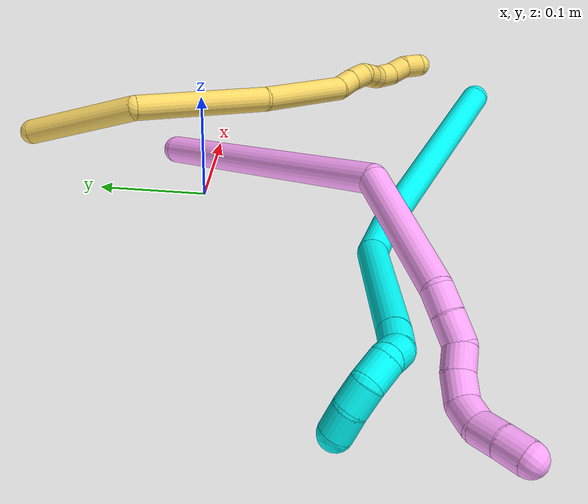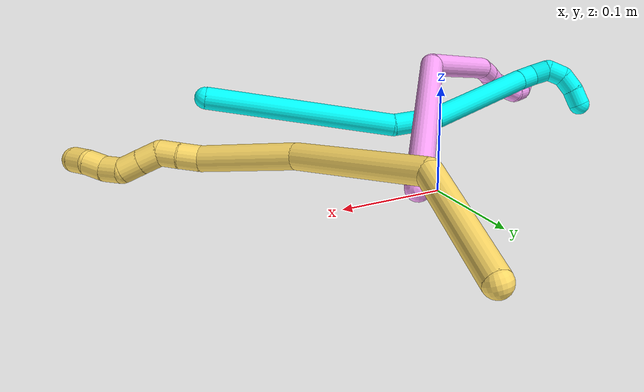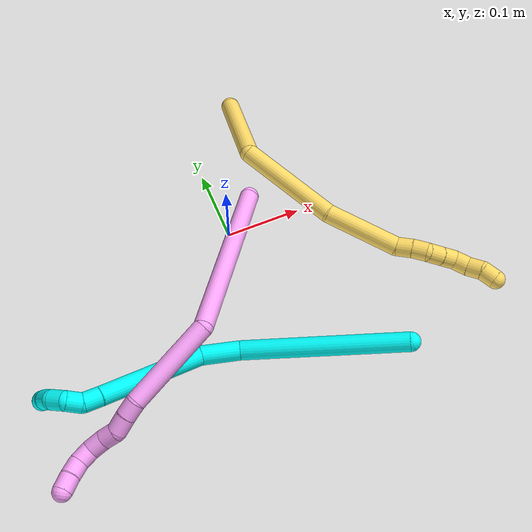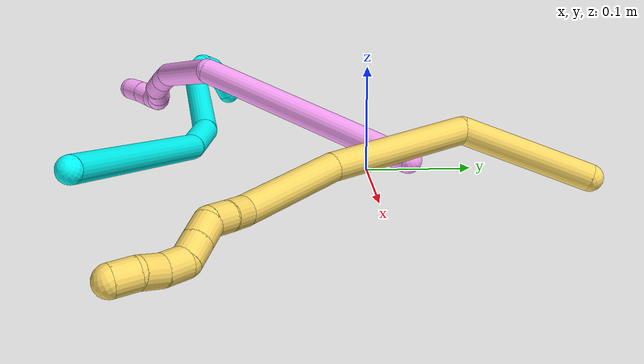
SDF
<sdf version="1.7">
 <world name="default">
  <model name="3">
   <static>0</static>
   <link name="3">
    <collision name="collision-cylinder-e_1_1_4">
     <pose>-0.014476 0.036827 -0.098389 -2.78344 -0.136928 0.724216</pose>
     <geometry><cylinder><radius>0.0125</radius><length>0.212096</length></cylinder></geometry>
     <surface>
      <friction><ode><mu>1.16</mu><mu2>1.16</mu2><slip1>0</slip1><slip2>0</slip2></ode></friction>
      <contact><ode><kp>1e+06</kp><kd>1</kd><max_vel>0</max_vel><min_depth>0.001</min_depth></ode></contact>
     </surface>
    </collision>
    <visual name="visual-cylinder-e_1_1_4">
     <pose>-0.014476 0.036827 -0.098389 -2.78344 -0.136928 0.724216</pose>
     <geometry><cylinder><radius>0.0125</radius><length>0.212096</length></cylinder></geometry>
     <material><ambient>0.003922 1 0.996078 1</ambient></material>
    </visual>
    <collision name="collision-cylinder-e_2_4_5">
     <pose>-0.03817 0.086415 -0.216389 -2.5647 -0.375324 1.1386</pose>
     <geometry><cylinder><radius>0.0125</radius><length>0.050295</length></cylinder></geometry>
     <surface>
      <friction><ode><mu>1.16</mu><mu2>1.16</mu2><slip1>0</slip1><slip2>0</slip2></ode></friction>
      <contact><ode><kp>1e+06</kp><kd>1</kd><max_vel>0</max_vel><min_depth>0.001</min_depth></ode></contact>
     </surface>
    </collision>
    <visual name="visual-cylinder-e_2_4_5">
     <pose>-0.03817 0.086415 -0.216389 -2.5647 -0.375324 1.1386</pose>
     <geometry><cylinder><radius>0.0125</radius><length>0.050295</length></cylinder></geometry>
     <material><ambient>0.003922 1 0.996078 1</ambient></material>
    </visual>
    <collision name="collision-cylinder-e_3_5_6">
     <pose>-0.091553 0.13115 -0.275332 -2.45905 -0.716722 1.62386</pose>
     <geometry><cylinder><radius>0.0125</radius><length>0.134461</length></cylinder></geometry>
     <surface>
      <friction><ode><mu>1.16</mu><mu2>1.16</mu2><slip1>0</slip1><slip2>0</slip2></ode></friction>
      <contact><ode><kp>1e+06</kp><kd>1</kd><max_vel>0</max_vel><min_depth>0.001</min_depth></ode></contact>
     </surface>
    </collision>
    <visual name="visual-cylinder-e_3_5_6">
     <pose>-0.091553 0.13115 -0.275332 -2.45905 -0.716722 1.62386</pose>
     <geometry><cylinder><radius>0.0125</radius><length>0.134461</length></cylinder></geometry>
     <material><ambient>0.003922 1 0.996078 1</ambient></material>
    </visual>
    <collision name="collision-cylinder-e_4_6_7">
     <pose>-0.142789 0.168452 -0.321842 -2.50282 -0.669277 1.62092</pose>
     <geometry><cylinder><radius>0.0125</radius><length>0.022796</length></cylinder></geometry>
     <surface>
      <friction><ode><mu>1.16</mu><mu2>1.16</mu2><slip1>0</slip1><slip2>0</slip2></ode></friction>
      <contact><ode><kp>1e+06</kp><kd>1</kd><max_vel>0</max_vel><min_depth>0.001</min_depth></ode></contact>
     </surface>
    </collision>
    <visual name="visual-cylinder-e_4_6_7">
     <pose>-0.142789 0.168452 -0.321842 -2.50282 -0.669277 1.62092</pose>
     <geometry><cylinder><radius>0.0125</radius><length>0.022796</length></cylinder></geometry>
     <material><ambient>0.003922 1 0.996078 1</ambient></material>
    </visual>
    <collision name="collision-cylinder-e_5_7_8">
     <pose>-0.151914 0.181188 -0.335676 -2.30299 -0.203378 0.450098</pose>
     <geometry><cylinder><radius>0.0125</radius><length>0.020335</length></cylinder></geometry>
     <surface>
      <friction><ode><mu>1.16</mu><mu2>1.16</mu2><slip1>0</slip1><slip2>0</slip2></ode></friction>
      <contact><ode><kp>1e+06</kp><kd>1</kd><max_vel>0</max_vel><min_depth>0.001</min_depth></ode></contact>
     </surface>
    </collision>
    <visual name="visual-cylinder-e_5_7_8">
     <pose>-0.151914 0.181188 -0.335676 -2.30299 -0.203378 0.450098</pose>
     <geometry><cylinder><radius>0.0125</radius><length>0.020335</length></cylinder></geometry>
     <material><ambient>0.003922 1 0.996078 1</ambient></material>
    </visual>
    <collision name="collision-cylinder-e_6_8_9">
     <pose>-0.152918 0.190322 -0.352129 -2.96698 0.10515 -1.08263</pose>
     <geometry><cylinder><radius>0.0125</radius><length>0.020005</length></cylinder></geometry>
     <surface>
      <friction><ode><mu>1.16</mu><mu2>1.16</mu2><slip1>0</slip1><slip2>0</slip2></ode></friction>
      <contact><ode><kp>1e+06</kp><kd>1</kd><max_vel>0</max_vel><min_depth>0.001</min_depth></ode></contact>
     </surface>
    </collision>
    <visual name="visual-cylinder-e_6_8_9">
     <pose>-0.152918 0.190322 -0.352129 -2.96698 0.10515 -1.08263</pose>
     <geometry><cylinder><radius>0.0125</radius><length>0.020005</length></cylinder></geometry>
     <material><ambient>0.003922 1 0.996078 1</ambient></material>
    </visual>
    <collision name="collision-cylinder-e_7_9_10">
     <pose>-0.148835 0.189132 -0.371001 2.83057 0.308027 1.56096</pose>
     <geometry><cylinder><radius>0.0125</radius><length>0.02001</length></cylinder></geometry>
     <surface>
      <friction><ode><mu>1.16</mu><mu2>1.16</mu2><slip1>0</slip1><slip2>0</slip2></ode></friction>
      <contact><ode><kp>1e+06</kp><kd>1</kd><max_vel>0</max_vel><min_depth>0.001</min_depth></ode></contact>
     </surface>
    </collision>
    <visual name="visual-cylinder-e_7_9_10">
     <pose>-0.148835 0.189132 -0.371001 2.83057 0.308027 1.56096</pose>
     <geometry><cylinder><radius>0.0125</radius><length>0.02001</length></cylinder></geometry>
     <material><ambient>0.003922 1 0.996078 1</ambient></material>
    </visual>
    <collision name="collision-cylinder-e_8_10_2">
     <pose>-0.142404 0.181301 -0.388099 2.59203 0.34663 1.11146</pose>
     <geometry><cylinder><radius>0.0125</radius><length>0.020002</length></cylinder></geometry>
     <surface>
      <friction><ode><mu>1.16</mu><mu2>1.16</mu2><slip1>0</slip1><slip2>0</slip2></ode></friction>
      <contact><ode><kp>1e+06</kp><kd>1</kd><max_vel>0</max_vel><min_depth>0.001</min_depth></ode></contact>
     </surface>
    </collision>
    <visual name="visual-cylinder-e_8_10_2">
     <pose>-0.142404 0.181301 -0.388099 2.59203 0.34663 1.11146</pose>
     <geometry><cylinder><radius>0.0125</radius><length>0.020002</length></cylinder></geometry>
     <material><ambient>0.003922 1 0.996078 1</ambient></material>
    </visual>
    <collision name="collision-sphere-2">
     <pose>-0.139006 0.176388 -0.39612 0 -0 0</pose>
     <geometry><sphere><radius>0.0125</radius></sphere></geometry>
     <surface>
      <friction><ode><mu>1.16</mu><mu2>1.16</mu2><slip1>0</slip1><slip2>0</slip2></ode></friction>
      <contact><ode><kp>1e+06</kp><kd>1</kd><max_vel>0</max_vel><min_depth>0.001</min_depth></ode></contact>
     </surface>
    </collision>
    <visual name="visual-sphere-2">
     <pose>-0.139006 0.176388 -0.39612 0 -0 0</pose>
     <geometry><sphere><radius>0.0125</radius></sphere></geometry>
     <material><ambient>0.003922 1 0.996078 1</ambient></material>
    </visual>
    <collision name="collision-sphere-10">
     <pose>-0.145802 0.186214 -0.380078 0 -0 0</pose>
     <geometry><sphere><radius>0.0125</radius></sphere></geometry>
     <surface>
      <friction><ode><mu>1.16</mu><mu2>1.16</mu2><slip1>0</slip1><slip2>0</slip2></ode></friction>
      <contact><ode><kp>1e+06</kp><kd>1</kd><max_vel>0</max_vel><min_depth>0.001</min_depth></ode></contact>
     </surface>
    </collision>
    <visual name="visual-sphere-10">
     <pose>-0.145802 0.186214 -0.380078 0 -0 0</pose>
     <geometry><sphere><radius>0.0125</radius></sphere></geometry>
     <material><ambient>0.003922 1 0.996078 1</ambient></material>
    </visual>
    <collision name="collision-sphere-9">
     <pose>-0.151868 0.19205 -0.361925 0 -0 0</pose>
     <geometry><sphere><radius>0.0125</radius></sphere></geometry>
     <surface>
      <friction><ode><mu>1.16</mu><mu2>1.16</mu2><slip1>0</slip1><slip2>0</slip2></ode></friction>
      <contact><ode><kp>1e+06</kp><kd>1</kd><max_vel>0</max_vel><min_depth>0.001</min_depth></ode></contact>
     </surface>
    </collision>
    <visual name="visual-sphere-9">
     <pose>-0.151868 0.19205 -0.361925 0 -0 0</pose>
     <geometry><sphere><radius>0.0125</radius></sphere></geometry>
     <material><ambient>0.003922 1 0.996078 1</ambient></material>
    </visual>
    <collision name="collision-sphere-4">
     <pose>-0.028951 0.073654 -0.196778 0 -0 0</pose>
     <geometry><sphere><radius>0.0125</radius></sphere></geometry>
     <surface>
      <friction><ode><mu>1.16</mu><mu2>1.16</mu2><slip1>0</slip1><slip2>0</slip2></ode></friction>
      <contact><ode><kp>1e+06</kp><kd>1</kd><max_vel>0</max_vel><min_depth>0.001</min_depth></ode></contact>
     </surface>
    </collision>
    <visual name="visual-sphere-4">
     <pose>-0.028951 0.073654 -0.196778 0 -0 0</pose>
     <geometry><sphere><radius>0.0125</radius></sphere></geometry>
     <material><ambient>0.003922 1 0.996078 1</ambient></material>
    </visual>
    <collision name="collision-sphere-1">
     <geometry><sphere><radius>0.0125</radius></sphere></geometry>
     <surface>
      <friction><ode><mu>1.16</mu><mu2>1.16</mu2><slip1>0</slip1><slip2>0</slip2></ode></friction>
      <contact><ode><kp>1e+06</kp><kd>1</kd><max_vel>0</max_vel><min_depth>0.001</min_depth></ode></contact>
     </surface>
    </collision>
    <visual name="visual-sphere-1">
     <geometry><sphere><radius>0.0125</radius></sphere></geometry>
     <material><ambient>0.003922 1 0.996078 1</ambient></material>
    </visual>
    <collision name="collision-sphere-8">
     <pose>-0.153968 0.188594 -0.342332 0 -0 0</pose>
     <geometry><sphere><radius>0.0125</radius></sphere></geometry>
     <surface>
      <friction><ode><mu>1.16</mu><mu2>1.16</mu2><slip1>0</slip1><slip2>0</slip2></ode></friction>
      <contact><ode><kp>1e+06</kp><kd>1</kd><max_vel>0</max_vel><min_depth>0.001</min_depth></ode></contact>
     </surface>
    </collision>
    <visual name="visual-sphere-8">
     <pose>-0.153968 0.188594 -0.342332 0 -0 0</pose>
     <geometry><sphere><radius>0.0125</radius></sphere></geometry>
     <material><ambient>0.003922 1 0.996078 1</ambient></material>
    </visual>
    <collision name="collision-sphere-5">
     <pose>-0.047388 0.099176 -0.235999 0 -0 0</pose>
     <geometry><sphere><radius>0.0125</radius></sphere></geometry>
     <surface>
      <friction><ode><mu>1.16</mu><mu2>1.16</mu2><slip1>0</slip1><slip2>0</slip2></ode></friction>
      <contact><ode><kp>1e+06</kp><kd>1</kd><max_vel>0</max_vel><min_depth>0.001</min_depth></ode></contact>
     </surface>
    </collision>
    <visual name="visual-sphere-5">
     <pose>-0.047388 0.099176 -0.235999 0 -0 0</pose>
     <geometry><sphere><radius>0.0125</radius></sphere></geometry>
     <material><ambient>0.003922 1 0.996078 1</ambient></material>
    </visual>
    <collision name="collision-sphere-6">
     <pose>-0.135718 0.163123 -0.314666 0 -0 0</pose>
     <geometry><sphere><radius>0.0125</radius></sphere></geometry>
     <surface>
      <friction><ode><mu>1.16</mu><mu2>1.16</mu2><slip1>0</slip1><slip2>0</slip2></ode></friction>
      <contact><ode><kp>1e+06</kp><kd>1</kd><max_vel>0</max_vel><min_depth>0.001</min_depth></ode></contact>
     </surface>
    </collision>
    <visual name="visual-sphere-6">
     <pose>-0.135718 0.163123 -0.314666 0 -0 0</pose>
     <geometry><sphere><radius>0.0125</radius></sphere></geometry>
     <material><ambient>0.003922 1 0.996078 1</ambient></material>
    </visual>
    <collision name="collision-sphere-7">
     <pose>-0.149861 0.173782 -0.329019 0 -0 0</pose>
     <geometry><sphere><radius>0.0125</radius></sphere></geometry>
     <surface>
      <friction><ode><mu>1.16</mu><mu2>1.16</mu2><slip1>0</slip1><slip2>0</slip2></ode></friction>
      <contact><ode><kp>1e+06</kp><kd>1</kd><max_vel>0</max_vel><min_depth>0.001</min_depth></ode></contact>
     </surface>
    </collision>
    <visual name="visual-sphere-7">
     <pose>-0.149861 0.173782 -0.329019 0 -0 0</pose>
     <geometry><sphere><radius>0.0125</radius></sphere></geometry>
     <material><ambient>0.003922 1 0.996078 1</ambient></material>
    </visual>
    <inertial>
     <pose>-0.06506 0.097069 -0.210332 0 -0 0</pose>
     <mass>0.5</mass>
     <inertia>
      <ixx>0.001282</ixx>
      <ixy>0</ixy>
      <ixz>0</ixz>
      <iyy>0.000265</iyy>
      <iyz>0</iyz>
      <izz>-0.000165</izz>
     </inertia>
    </inertial>
   </link>
   <pose>0.139916 -0.25361 0.047988 1.01858 0.155695 0.982852</pose>
  </model>
  <model name="4">
   <static>0</static>
   <link name="4">
    <collision name="collision-cylinder-e_1_1_4">
     <pose>0.007627 -0.060784 -0.10121 2.60075 0.064516 0.23177</pose>
     <geometry><cylinder><radius>0.0125</radius><length>0.236611</length></cylinder></geometry>
     <surface>
      <friction><ode><mu>1.16</mu><mu2>1.16</mu2><slip1>0</slip1><slip2>0</slip2></ode></friction>
      <contact><ode><kp>1e+06</kp><kd>1</kd><max_vel>0</max_vel><min_depth>0.001</min_depth></ode></contact>
     </surface>
    </collision>
    <visual name="visual-cylinder-e_1_1_4">
     <pose>0.007627 -0.060784 -0.10121 2.60075 0.064516 0.23177</pose>
     <geometry><cylinder><radius>0.0125</radius><length>0.236611</length></cylinder></geometry>
     <material><ambient>1 0.65098 0.996078 1</ambient></material>
    </visual>
    <collision name="collision-cylinder-e_2_4_5">
     <pose>-0.014627 -0.130609 -0.252396 2.9626 -0.531809 -2.50504</pose>
     <geometry><cylinder><radius>0.0125</radius><length>0.117854</length></cylinder></geometry>
     <surface>
      <friction><ode><mu>1.16</mu><mu2>1.16</mu2><slip1>0</slip1><slip2>0</slip2></ode></friction>
      <contact><ode><kp>1e+06</kp><kd>1</kd><max_vel>0</max_vel><min_depth>0.001</min_depth></ode></contact>
     </surface>
    </collision>
    <visual name="visual-cylinder-e_2_4_5">
     <pose>-0.014627 -0.130609 -0.252396 2.9626 -0.531809 -2.50504</pose>
     <geometry><cylinder><radius>0.0125</radius><length>0.117854</length></cylinder></geometry>
     <material><ambient>1 0.65098 0.996078 1</ambient></material>
    </visual>
    <collision name="collision-cylinder-e_3_5_6">
     <pose>-0.049647 -0.137993 -0.311285 -2.95758 -0.515709 2.46849</pose>
     <geometry><cylinder><radius>0.0125</radius><length>0.020839</length></cylinder></geometry>
     <surface>
      <friction><ode><mu>1.16</mu><mu2>1.16</mu2><slip1>0</slip1><slip2>0</slip2></ode></friction>
      <contact><ode><kp>1e+06</kp><kd>1</kd><max_vel>0</max_vel><min_depth>0.001</min_depth></ode></contact>
     </surface>
    </collision>
    <visual name="visual-cylinder-e_3_5_6">
     <pose>-0.049647 -0.137993 -0.311285 -2.95758 -0.515709 2.46849</pose>
     <geometry><cylinder><radius>0.0125</radius><length>0.020839</length></cylinder></geometry>
     <material><ambient>1 0.65098 0.996078 1</ambient></material>
    </visual>
    <collision name="collision-cylinder-e_4_6_7">
     <pose>-0.059956 -0.133612 -0.329844 -2.86653 -0.476201 2.10506</pose>
     <geometry><cylinder><radius>0.0125</radius><length>0.02256</length></cylinder></geometry>
     <surface>
      <friction><ode><mu>1.16</mu><mu2>1.16</mu2><slip1>0</slip1><slip2>0</slip2></ode></friction>
      <contact><ode><kp>1e+06</kp><kd>1</kd><max_vel>0</max_vel><min_depth>0.001</min_depth></ode></contact>
     </surface>
    </collision>
    <visual name="visual-cylinder-e_4_6_7">
     <pose>-0.059956 -0.133612 -0.329844 -2.86653 -0.476201 2.10506</pose>
     <geometry><cylinder><radius>0.0125</radius><length>0.02256</length></cylinder></geometry>
     <material><ambient>1 0.65098 0.996078 1</ambient></material>
    </visual>
    <collision name="collision-cylinder-e_5_7_8">
     <pose>-0.07323 -0.128412 -0.344916 -2.71332 -0.936443 2.32937</pose>
     <geometry><cylinder><radius>0.0125</radius><length>0.020122</length></cylinder></geometry>
     <surface>
      <friction><ode><mu>1.16</mu><mu2>1.16</mu2><slip1>0</slip1><slip2>0</slip2></ode></friction>
      <contact><ode><kp>1e+06</kp><kd>1</kd><max_vel>0</max_vel><min_depth>0.001</min_depth></ode></contact>
     </surface>
    </collision>
    <visual name="visual-cylinder-e_5_7_8">
     <pose>-0.07323 -0.128412 -0.344916 -2.71332 -0.936443 2.32937</pose>
     <geometry><cylinder><radius>0.0125</radius><length>0.020122</length></cylinder></geometry>
     <material><ambient>1 0.65098 0.996078 1</ambient></material>
    </visual>
    <collision name="collision-cylinder-e_6_8_9">
     <pose>-0.089039 -0.125053 -0.35778 -3.02336 -0.79945 2.86322</pose>
     <geometry><cylinder><radius>0.0125</radius><length>0.021493</length></cylinder></geometry>
     <surface>
      <friction><ode><mu>1.16</mu><mu2>1.16</mu2><slip1>0</slip1><slip2>0</slip2></ode></friction>
      <contact><ode><kp>1e+06</kp><kd>1</kd><max_vel>0</max_vel><min_depth>0.001</min_depth></ode></contact>
     </surface>
    </collision>
    <visual name="visual-cylinder-e_6_8_9">
     <pose>-0.089039 -0.125053 -0.35778 -3.02336 -0.79945 2.86322</pose>
     <geometry><cylinder><radius>0.0125</radius><length>0.021493</length></cylinder></geometry>
     <material><ambient>1 0.65098 0.996078 1</ambient></material>
    </visual>
    <collision name="collision-cylinder-e_7_9_10">
     <pose>-0.101353 -0.127202 -0.373605 2.79453 -0.47702 -1.89227</pose>
     <geometry><cylinder><radius>0.0125</radius><length>0.020077</length></cylinder></geometry>
     <surface>
      <friction><ode><mu>1.16</mu><mu2>1.16</mu2><slip1>0</slip1><slip2>0</slip2></ode></friction>
      <contact><ode><kp>1e+06</kp><kd>1</kd><max_vel>0</max_vel><min_depth>0.001</min_depth></ode></contact>
     </surface>
    </collision>
    <visual name="visual-cylinder-e_7_9_10">
     <pose>-0.101353 -0.127202 -0.373605 2.79453 -0.47702 -1.89227</pose>
     <geometry><cylinder><radius>0.0125</radius><length>0.020077</length></cylinder></geometry>
     <material><ambient>1 0.65098 0.996078 1</ambient></material>
    </visual>
    <collision name="collision-cylinder-e_8_10_11">
     <pose>-0.10735 -0.135123 -0.390738 2.63207 -0.137702 -0.517725</pose>
     <geometry><cylinder><radius>0.0125</radius><length>0.020232</length></cylinder></geometry>
     <surface>
      <friction><ode><mu>1.16</mu><mu2>1.16</mu2><slip1>0</slip1><slip2>0</slip2></ode></friction>
      <contact><ode><kp>1e+06</kp><kd>1</kd><max_vel>0</max_vel><min_depth>0.001</min_depth></ode></contact>
     </surface>
    </collision>
    <visual name="visual-cylinder-e_8_10_11">
     <pose>-0.10735 -0.135123 -0.390738 2.63207 -0.137702 -0.517725</pose>
     <geometry><cylinder><radius>0.0125</radius><length>0.020232</length></cylinder></geometry>
     <material><ambient>1 0.65098 0.996078 1</ambient></material>
    </visual>
    <collision name="collision-cylinder-e_9_11_2">
     <pose>-0.109825 -0.143903 -0.408749 2.74372 -0.107644 -0.522255</pose>
     <geometry><cylinder><radius>0.0125</radius><length>0.020213</length></cylinder></geometry>
     <surface>
      <friction><ode><mu>1.16</mu><mu2>1.16</mu2><slip1>0</slip1><slip2>0</slip2></ode></friction>
      <contact><ode><kp>1e+06</kp><kd>1</kd><max_vel>0</max_vel><min_depth>0.001</min_depth></ode></contact>
     </surface>
    </collision>
    <visual name="visual-cylinder-e_9_11_2">
     <pose>-0.109825 -0.143903 -0.408749 2.74372 -0.107644 -0.522255</pose>
     <geometry><cylinder><radius>0.0125</radius><length>0.020213</length></cylinder></geometry>
     <material><ambient>1 0.65098 0.996078 1</ambient></material>
    </visual>
    <collision name="collision-sphere-2">
     <pose>-0.11091 -0.147797 -0.418012 0 -0 0</pose>
     <geometry><sphere><radius>0.0125</radius></sphere></geometry>
     <surface>
      <friction><ode><mu>1.16</mu><mu2>1.16</mu2><slip1>0</slip1><slip2>0</slip2></ode></friction>
      <contact><ode><kp>1e+06</kp><kd>1</kd><max_vel>0</max_vel><min_depth>0.001</min_depth></ode></contact>
     </surface>
    </collision>
    <visual name="visual-sphere-2">
     <pose>-0.11091 -0.147797 -0.418012 0 -0 0</pose>
     <geometry><sphere><radius>0.0125</radius></sphere></geometry>
     <material><ambient>1 0.65098 0.996078 1</ambient></material>
    </visual>
    <collision name="collision-sphere-11">
     <pose>-0.108739 -0.14001 -0.399485 0 -0 0</pose>
     <geometry><sphere><radius>0.0125</radius></sphere></geometry>
     <surface>
      <friction><ode><mu>1.16</mu><mu2>1.16</mu2><slip1>0</slip1><slip2>0</slip2></ode></friction>
      <contact><ode><kp>1e+06</kp><kd>1</kd><max_vel>0</max_vel><min_depth>0.001</min_depth></ode></contact>
     </surface>
    </collision>
    <visual name="visual-sphere-11">
     <pose>-0.108739 -0.14001 -0.399485 0 -0 0</pose>
     <geometry><sphere><radius>0.0125</radius></sphere></geometry>
     <material><ambient>1 0.65098 0.996078 1</ambient></material>
    </visual>
    <collision name="collision-sphere-10">
     <pose>-0.105962 -0.130235 -0.381991 0 -0 0</pose>
     <geometry><sphere><radius>0.0125</radius></sphere></geometry>
     <surface>
      <friction><ode><mu>1.16</mu><mu2>1.16</mu2><slip1>0</slip1><slip2>0</slip2></ode></friction>
      <contact><ode><kp>1e+06</kp><kd>1</kd><max_vel>0</max_vel><min_depth>0.001</min_depth></ode></contact>
     </surface>
    </collision>
    <visual name="visual-sphere-10">
     <pose>-0.105962 -0.130235 -0.381991 0 -0 0</pose>
     <geometry><sphere><radius>0.0125</radius></sphere></geometry>
     <material><ambient>1 0.65098 0.996078 1</ambient></material>
    </visual>
    <collision name="collision-sphere-9">
     <pose>-0.096744 -0.124169 -0.365219 0 -0 0</pose>
     <geometry><sphere><radius>0.0125</radius></sphere></geometry>
     <surface>
      <friction><ode><mu>1.16</mu><mu2>1.16</mu2><slip1>0</slip1><slip2>0</slip2></ode></friction>
      <contact><ode><kp>1e+06</kp><kd>1</kd><max_vel>0</max_vel><min_depth>0.001</min_depth></ode></contact>
     </surface>
    </collision>
    <visual name="visual-sphere-9">
     <pose>-0.096744 -0.124169 -0.365219 0 -0 0</pose>
     <geometry><sphere><radius>0.0125</radius></sphere></geometry>
     <material><ambient>1 0.65098 0.996078 1</ambient></material>
    </visual>
    <collision name="collision-sphere-4">
     <pose>0.015255 -0.121567 -0.202419 0 -0 0</pose>
     <geometry><sphere><radius>0.0125</radius></sphere></geometry>
     <surface>
      <friction><ode><mu>1.16</mu><mu2>1.16</mu2><slip1>0</slip1><slip2>0</slip2></ode></friction>
      <contact><ode><kp>1e+06</kp><kd>1</kd><max_vel>0</max_vel><min_depth>0.001</min_depth></ode></contact>
     </surface>
    </collision>
    <visual name="visual-sphere-4">
     <pose>0.015255 -0.121567 -0.202419 0 -0 0</pose>
     <geometry><sphere><radius>0.0125</radius></sphere></geometry>
     <material><ambient>1 0.65098 0.996078 1</ambient></material>
    </visual>
    <collision name="collision-sphere-1">
     <geometry><sphere><radius>0.0125</radius></sphere></geometry>
     <surface>
      <friction><ode><mu>1.16</mu><mu2>1.16</mu2><slip1>0</slip1><slip2>0</slip2></ode></friction>
      <contact><ode><kp>1e+06</kp><kd>1</kd><max_vel>0</max_vel><min_depth>0.001</min_depth></ode></contact>
     </surface>
    </collision>
    <visual name="visual-sphere-1">
     <geometry><sphere><radius>0.0125</radius></sphere></geometry>
     <material><ambient>1 0.65098 0.996078 1</ambient></material>
    </visual>
    <collision name="collision-sphere-8">
     <pose>-0.081334 -0.125936 -0.35034 0 -0 0</pose>
     <geometry><sphere><radius>0.0125</radius></sphere></geometry>
     <surface>
      <friction><ode><mu>1.16</mu><mu2>1.16</mu2><slip1>0</slip1><slip2>0</slip2></ode></friction>
      <contact><ode><kp>1e+06</kp><kd>1</kd><max_vel>0</max_vel><min_depth>0.001</min_depth></ode></contact>
     </surface>
    </collision>
    <visual name="visual-sphere-8">
     <pose>-0.081334 -0.125936 -0.35034 0 -0 0</pose>
     <geometry><sphere><radius>0.0125</radius></sphere></geometry>
     <material><ambient>1 0.65098 0.996078 1</ambient></material>
    </visual>
    <collision name="collision-sphere-5">
     <pose>-0.044508 -0.139652 -0.302374 0 -0 0</pose>
     <geometry><sphere><radius>0.0125</radius></sphere></geometry>
     <surface>
      <friction><ode><mu>1.16</mu><mu2>1.16</mu2><slip1>0</slip1><slip2>0</slip2></ode></friction>
      <contact><ode><kp>1e+06</kp><kd>1</kd><max_vel>0</max_vel><min_depth>0.001</min_depth></ode></contact>
     </surface>
    </collision>
    <visual name="visual-sphere-5">
     <pose>-0.044508 -0.139652 -0.302374 0 -0 0</pose>
     <geometry><sphere><radius>0.0125</radius></sphere></geometry>
     <material><ambient>1 0.65098 0.996078 1</ambient></material>
    </visual>
    <collision name="collision-sphere-6">
     <pose>-0.054785 -0.136334 -0.320196 0 -0 0</pose>
     <geometry><sphere><radius>0.0125</radius></sphere></geometry>
     <surface>
      <friction><ode><mu>1.16</mu><mu2>1.16</mu2><slip1>0</slip1><slip2>0</slip2></ode></friction>
      <contact><ode><kp>1e+06</kp><kd>1</kd><max_vel>0</max_vel><min_depth>0.001</min_depth></ode></contact>
     </surface>
    </collision>
    <visual name="visual-sphere-6">
     <pose>-0.054785 -0.136334 -0.320196 0 -0 0</pose>
     <geometry><sphere><radius>0.0125</radius></sphere></geometry>
     <material><ambient>1 0.65098 0.996078 1</ambient></material>
    </visual>
    <collision name="collision-sphere-7">
     <pose>-0.065127 -0.130889 -0.339492 0 -0 0</pose>
     <geometry><sphere><radius>0.0125</radius></sphere></geometry>
     <surface>
      <friction><ode><mu>1.16</mu><mu2>1.16</mu2><slip1>0</slip1><slip2>0</slip2></ode></friction>
      <contact><ode><kp>1e+06</kp><kd>1</kd><max_vel>0</max_vel><min_depth>0.001</min_depth></ode></contact>
     </surface>
    </collision>
    <visual name="visual-sphere-7">
     <pose>-0.065127 -0.130889 -0.339492 0 -0 0</pose>
     <geometry><sphere><radius>0.0125</radius></sphere></geometry>
     <material><ambient>1 0.65098 0.996078 1</ambient></material>
    </visual>
    <inertial>
     <pose>-0.02424 -0.098265 -0.211839 0 -0 0</pose>
     <mass>0.5</mass>
     <inertia>
      <ixx>0.001157</ixx>
      <ixy>0</ixy>
      <ixz>0</ixz>
      <iyy>-0.000626</iyy>
      <iyz>0</iyz>
      <izz>0.000566</izz>
     </inertia>
    </inertial>
   </link>
   <pose>0.043352 0.033422 0.021856 -1.27528 -0.214884 -0.63374</pose>
  </model>
  <model name="5">
   <static>0</static>
   <link name="5">
    <collision name="collision-cylinder-e_1_1_4">
     <pose>-0.009009 -0.04483 0.040494 0.836178 -0.148039 -0.065868</pose>
     <geometry><cylinder><radius>0.0125</radius><length>0.122158</length></cylinder></geometry>
     <surface>
      <friction><ode><mu>1.16</mu><mu2>1.16</mu2><slip1>0</slip1><slip2>0</slip2></ode></friction>
      <contact><ode><kp>1e+06</kp><kd>1</kd><max_vel>0</max_vel><min_depth>0.001</min_depth></ode></contact>
     </surface>
    </collision>
    <visual name="visual-cylinder-e_1_1_4">
     <pose>-0.009009 -0.04483 0.040494 0.836178 -0.148039 -0.065868</pose>
     <geometry><cylinder><radius>0.0125</radius><length>0.122158</length></cylinder></geometry>
     <material><ambient>1 0.858824 0.4 1</ambient></material>
    </visual>
    <collision name="collision-cylinder-e_2_4_5">
     <pose>0.015382 -0.14572 0.101704 1.21682 0.509614 0.358956</pose>
     <geometry><cylinder><radius>0.0125</radius><length>0.136929</length></cylinder></geometry>
     <surface>
      <friction><ode><mu>1.16</mu><mu2>1.16</mu2><slip1>0</slip1><slip2>0</slip2></ode></friction>
      <contact><ode><kp>1e+06</kp><kd>1</kd><max_vel>0</max_vel><min_depth>0.001</min_depth></ode></contact>
     </surface>
    </collision>
    <visual name="visual-cylinder-e_2_4_5">
     <pose>0.015382 -0.14572 0.101704 1.21682 0.509614 0.358956</pose>
     <geometry><cylinder><radius>0.0125</radius><length>0.136929</length></cylinder></geometry>
     <material><ambient>1 0.858824 0.4 1</ambient></material>
    </visual>
    <collision name="collision-cylinder-e_3_5_6">
     <pose>0.082815 -0.235735 0.133486 1.25576 0.761332 0.565405</pose>
     <geometry><cylinder><radius>0.0125</radius><length>0.098666</length></cylinder></geometry>
     <surface>
      <friction><ode><mu>1.16</mu><mu2>1.16</mu2><slip1>0</slip1><slip2>0</slip2></ode></friction>
      <contact><ode><kp>1e+06</kp><kd>1</kd><max_vel>0</max_vel><min_depth>0.001</min_depth></ode></contact>
     </surface>
    </collision>
    <visual name="visual-cylinder-e_3_5_6">
     <pose>0.082815 -0.235735 0.133486 1.25576 0.761332 0.565405</pose>
     <geometry><cylinder><radius>0.0125</radius><length>0.098666</length></cylinder></geometry>
     <material><ambient>1 0.858824 0.4 1</ambient></material>
    </visual>
    <collision name="collision-cylinder-e_4_6_7">
     <pose>0.125466 -0.274175 0.148696 0.824881 0.954255 0.444895</pose>
     <geometry><cylinder><radius>0.0125</radius><length>0.021123</length></cylinder></geometry>
     <surface>
      <friction><ode><mu>1.16</mu><mu2>1.16</mu2><slip1>0</slip1><slip2>0</slip2></ode></friction>
      <contact><ode><kp>1e+06</kp><kd>1</kd><max_vel>0</max_vel><min_depth>0.001</min_depth></ode></contact>
     </surface>
    </collision>
    <visual name="visual-cylinder-e_4_6_7">
     <pose>0.125466 -0.274175 0.148696 0.824881 0.954255 0.444895</pose>
     <geometry><cylinder><radius>0.0125</radius><length>0.021123</length></cylinder></geometry>
     <material><ambient>1 0.858824 0.4 1</ambient></material>
    </visual>
    <collision name="collision-cylinder-e_5_7_8">
     <pose>0.141611 -0.284002 0.156799 0.932933 0.847347 0.446595</pose>
     <geometry><cylinder><radius>0.0125</radius><length>0.020086</length></cylinder></geometry>
     <surface>
      <friction><ode><mu>1.16</mu><mu2>1.16</mu2><slip1>0</slip1><slip2>0</slip2></ode></friction>
      <contact><ode><kp>1e+06</kp><kd>1</kd><max_vel>0</max_vel><min_depth>0.001</min_depth></ode></contact>
     </surface>
    </collision>
    <visual name="visual-cylinder-e_5_7_8">
     <pose>0.141611 -0.284002 0.156799 0.932933 0.847347 0.446595</pose>
     <geometry><cylinder><radius>0.0125</radius><length>0.020086</length></cylinder></geometry>
     <material><ambient>1 0.858824 0.4 1</ambient></material>
    </visual>
    <collision name="collision-cylinder-e_6_8_9">
     <pose>0.158056 -0.294083 0.15919 1.89037 1.0604 1.36335</pose>
     <geometry><cylinder><radius>0.0125</radius><length>0.020441</length></cylinder></geometry>
     <surface>
      <friction><ode><mu>1.16</mu><mu2>1.16</mu2><slip1>0</slip1><slip2>0</slip2></ode></friction>
      <contact><ode><kp>1e+06</kp><kd>1</kd><max_vel>0</max_vel><min_depth>0.001</min_depth></ode></contact>
     </surface>
    </collision>
    <visual name="visual-cylinder-e_6_8_9">
     <pose>0.158056 -0.294083 0.15919 1.89037 1.0604 1.36335</pose>
     <geometry><cylinder><radius>0.0125</radius><length>0.020441</length></cylinder></geometry>
     <material><ambient>1 0.858824 0.4 1</ambient></material>
    </visual>
    <collision name="collision-cylinder-e_7_9_10">
     <pose>0.175752 -0.303406 0.155983 1.91405 1.06453 1.39256</pose>
     <geometry><cylinder><radius>0.0125</radius><length>0.020074</length></cylinder></geometry>
     <surface>
      <friction><ode><mu>1.16</mu><mu2>1.16</mu2><slip1>0</slip1><slip2>0</slip2></ode></friction>
      <contact><ode><kp>1e+06</kp><kd>1</kd><max_vel>0</max_vel><min_depth>0.001</min_depth></ode></contact>
     </surface>
    </collision>
    <visual name="visual-cylinder-e_7_9_10">
     <pose>0.175752 -0.303406 0.155983 1.91405 1.06453 1.39256</pose>
     <geometry><cylinder><radius>0.0125</radius><length>0.020074</length></cylinder></geometry>
     <material><ambient>1 0.858824 0.4 1</ambient></material>
    </visual>
    <collision name="collision-cylinder-e_8_10_11">
     <pose>0.191155 -0.314987 0.157619 1.13322 0.708827 0.462412</pose>
     <geometry><cylinder><radius>0.0125</radius><length>0.020357</length></cylinder></geometry>
     <surface>
      <friction><ode><mu>1.16</mu><mu2>1.16</mu2><slip1>0</slip1><slip2>0</slip2></ode></friction>
      <contact><ode><kp>1e+06</kp><kd>1</kd><max_vel>0</max_vel><min_depth>0.001</min_depth></ode></contact>
     </surface>
    </collision>
    <visual name="visual-cylinder-e_8_10_11">
     <pose>0.191155 -0.314987 0.157619 1.13322 0.708827 0.462412</pose>
     <geometry><cylinder><radius>0.0125</radius><length>0.020357</length></cylinder></geometry>
     <material><ambient>1 0.858824 0.4 1</ambient></material>
    </visual>
    <collision name="collision-cylinder-e_9_11_12">
     <pose>0.204229 -0.327522 0.166281 0.798969 0.695541 0.303731</pose>
     <geometry><cylinder><radius>0.0125</radius><length>0.020125</length></cylinder></geometry>
     <surface>
      <friction><ode><mu>1.16</mu><mu2>1.16</mu2><slip1>0</slip1><slip2>0</slip2></ode></friction>
      <contact><ode><kp>1e+06</kp><kd>1</kd><max_vel>0</max_vel><min_depth>0.001</min_depth></ode></contact>
     </surface>
    </collision>
    <visual name="visual-cylinder-e_9_11_12">
     <pose>0.204229 -0.327522 0.166281 0.798969 0.695541 0.303731</pose>
     <geometry><cylinder><radius>0.0125</radius><length>0.020125</length></cylinder></geometry>
     <material><ambient>1 0.858824 0.4 1</ambient></material>
    </visual>
    <collision name="collision-cylinder-e_10_12_2">
     <pose>0.215643 -0.341068 0.175075 1.16869 0.518495 0.347293</pose>
     <geometry><cylinder><radius>0.0125</radius><length>0.020042</length></cylinder></geometry>
     <surface>
      <friction><ode><mu>1.16</mu><mu2>1.16</mu2><slip1>0</slip1><slip2>0</slip2></ode></friction>
      <contact><ode><kp>1e+06</kp><kd>1</kd><max_vel>0</max_vel><min_depth>0.001</min_depth></ode></contact>
     </surface>
    </collision>
    <visual name="visual-cylinder-e_10_12_2">
     <pose>0.215643 -0.341068 0.175075 1.16869 0.518495 0.347293</pose>
     <geometry><cylinder><radius>0.0125</radius><length>0.020042</length></cylinder></geometry>
     <material><ambient>1 0.858824 0.4 1</ambient></material>
    </visual>
    <collision name="collision-sphere-2">
     <pose>0.220609 -0.349078 0.178482 0 -0 0</pose>
     <geometry><sphere><radius>0.0125</radius></sphere></geometry>
     <surface>
      <friction><ode><mu>1.16</mu><mu2>1.16</mu2><slip1>0</slip1><slip2>0</slip2></ode></friction>
      <contact><ode><kp>1e+06</kp><kd>1</kd><max_vel>0</max_vel><min_depth>0.001</min_depth></ode></contact>
     </surface>
    </collision>
    <visual name="visual-sphere-2">
     <pose>0.220609 -0.349078 0.178482 0 -0 0</pose>
     <geometry><sphere><radius>0.0125</radius></sphere></geometry>
     <material><ambient>1 0.858824 0.4 1</ambient></material>
    </visual>
    <collision name="collision-sphere-12">
     <pose>0.210677 -0.333058 0.171669 0 -0 0</pose>
     <geometry><sphere><radius>0.0125</radius></sphere></geometry>
     <surface>
      <friction><ode><mu>1.16</mu><mu2>1.16</mu2><slip1>0</slip1><slip2>0</slip2></ode></friction>
      <contact><ode><kp>1e+06</kp><kd>1</kd><max_vel>0</max_vel><min_depth>0.001</min_depth></ode></contact>
     </surface>
    </collision>
    <visual name="visual-sphere-12">
     <pose>0.210677 -0.333058 0.171669 0 -0 0</pose>
     <geometry><sphere><radius>0.0125</radius></sphere></geometry>
     <material><ambient>1 0.858824 0.4 1</ambient></material>
    </visual>
    <collision name="collision-sphere-11">
     <pose>0.19778 -0.321986 0.160893 0 -0 0</pose>
     <geometry><sphere><radius>0.0125</radius></sphere></geometry>
     <surface>
      <friction><ode><mu>1.16</mu><mu2>1.16</mu2><slip1>0</slip1><slip2>0</slip2></ode></friction>
      <contact><ode><kp>1e+06</kp><kd>1</kd><max_vel>0</max_vel><min_depth>0.001</min_depth></ode></contact>
     </surface>
    </collision>
    <visual name="visual-sphere-11">
     <pose>0.19778 -0.321986 0.160893 0 -0 0</pose>
     <geometry><sphere><radius>0.0125</radius></sphere></geometry>
     <material><ambient>1 0.858824 0.4 1</ambient></material>
    </visual>
    <collision name="collision-sphere-10">
     <pose>0.184529 -0.307989 0.154345 0 -0 0</pose>
     <geometry><sphere><radius>0.0125</radius></sphere></geometry>
     <surface>
      <friction><ode><mu>1.16</mu><mu2>1.16</mu2><slip1>0</slip1><slip2>0</slip2></ode></friction>
      <contact><ode><kp>1e+06</kp><kd>1</kd><max_vel>0</max_vel><min_depth>0.001</min_depth></ode></contact>
     </surface>
    </collision>
    <visual name="visual-sphere-10">
     <pose>0.184529 -0.307989 0.154345 0 -0 0</pose>
     <geometry><sphere><radius>0.0125</radius></sphere></geometry>
     <material><ambient>1 0.858824 0.4 1</ambient></material>
    </visual>
    <collision name="collision-sphere-9">
     <pose>0.166974 -0.298823 0.157621 0 -0 0</pose>
     <geometry><sphere><radius>0.0125</radius></sphere></geometry>
     <surface>
      <friction><ode><mu>1.16</mu><mu2>1.16</mu2><slip1>0</slip1><slip2>0</slip2></ode></friction>
      <contact><ode><kp>1e+06</kp><kd>1</kd><max_vel>0</max_vel><min_depth>0.001</min_depth></ode></contact>
     </surface>
    </collision>
    <visual name="visual-sphere-9">
     <pose>0.166974 -0.298823 0.157621 0 -0 0</pose>
     <geometry><sphere><radius>0.0125</radius></sphere></geometry>
     <material><ambient>1 0.858824 0.4 1</ambient></material>
    </visual>
    <collision name="collision-sphere-4">
     <pose>-0.018018 -0.08966 0.080987 0 -0 0</pose>
     <geometry><sphere><radius>0.0125</radius></sphere></geometry>
     <surface>
      <friction><ode><mu>1.16</mu><mu2>1.16</mu2><slip1>0</slip1><slip2>0</slip2></ode></friction>
      <contact><ode><kp>1e+06</kp><kd>1</kd><max_vel>0</max_vel><min_depth>0.001</min_depth></ode></contact>
     </surface>
    </collision>
    <visual name="visual-sphere-4">
     <pose>-0.018018 -0.08966 0.080987 0 -0 0</pose>
     <geometry><sphere><radius>0.0125</radius></sphere></geometry>
     <material><ambient>1 0.858824 0.4 1</ambient></material>
    </visual>
    <collision name="collision-sphere-1">
     <geometry><sphere><radius>0.0125</radius></sphere></geometry>
     <surface>
      <friction><ode><mu>1.16</mu><mu2>1.16</mu2><slip1>0</slip1><slip2>0</slip2></ode></friction>
      <contact><ode><kp>1e+06</kp><kd>1</kd><max_vel>0</max_vel><min_depth>0.001</min_depth></ode></contact>
     </surface>
    </collision>
    <visual name="visual-sphere-1">
     <geometry><sphere><radius>0.0125</radius></sphere></geometry>
     <material><ambient>1 0.858824 0.4 1</ambient></material>
    </visual>
    <collision name="collision-sphere-8">
     <pose>0.149138 -0.289343 0.160758 0 -0 0</pose>
     <geometry><sphere><radius>0.0125</radius></sphere></geometry>
     <surface>
      <friction><ode><mu>1.16</mu><mu2>1.16</mu2><slip1>0</slip1><slip2>0</slip2></ode></friction>
      <contact><ode><kp>1e+06</kp><kd>1</kd><max_vel>0</max_vel><min_depth>0.001</min_depth></ode></contact>
     </surface>
    </collision>
    <visual name="visual-sphere-8">
     <pose>0.149138 -0.289343 0.160758 0 -0 0</pose>
     <geometry><sphere><radius>0.0125</radius></sphere></geometry>
     <material><ambient>1 0.858824 0.4 1</ambient></material>
    </visual>
    <collision name="collision-sphere-5">
     <pose>0.048781 -0.20178 0.12242 0 -0 0</pose>
     <geometry><sphere><radius>0.0125</radius></sphere></geometry>
     <surface>
      <friction><ode><mu>1.16</mu><mu2>1.16</mu2><slip1>0</slip1><slip2>0</slip2></ode></friction>
      <contact><ode><kp>1e+06</kp><kd>1</kd><max_vel>0</max_vel><min_depth>0.001</min_depth></ode></contact>
     </surface>
    </collision>
    <visual name="visual-sphere-5">
     <pose>0.048781 -0.20178 0.12242 0 -0 0</pose>
     <geometry><sphere><radius>0.0125</radius></sphere></geometry>
     <material><ambient>1 0.858824 0.4 1</ambient></material>
    </visual>
    <collision name="collision-sphere-6">
     <pose>0.116849 -0.26969 0.144552 0 -0 0</pose>
     <geometry><sphere><radius>0.0125</radius></sphere></geometry>
     <surface>
      <friction><ode><mu>1.16</mu><mu2>1.16</mu2><slip1>0</slip1><slip2>0</slip2></ode></friction>
      <contact><ode><kp>1e+06</kp><kd>1</kd><max_vel>0</max_vel><min_depth>0.001</min_depth></ode></contact>
     </surface>
    </collision>
    <visual name="visual-sphere-6">
     <pose>0.116849 -0.26969 0.144552 0 -0 0</pose>
     <geometry><sphere><radius>0.0125</radius></sphere></geometry>
     <material><ambient>1 0.858824 0.4 1</ambient></material>
    </visual>
    <collision name="collision-sphere-7">
     <pose>0.134083 -0.278661 0.15284 0 -0 0</pose>
     <geometry><sphere><radius>0.0125</radius></sphere></geometry>
     <surface>
      <friction><ode><mu>1.16</mu><mu2>1.16</mu2><slip1>0</slip1><slip2>0</slip2></ode></friction>
      <contact><ode><kp>1e+06</kp><kd>1</kd><max_vel>0</max_vel><min_depth>0.001</min_depth></ode></contact>
     </surface>
    </collision>
    <visual name="visual-sphere-7">
     <pose>0.134083 -0.278661 0.15284 0 -0 0</pose>
     <geometry><sphere><radius>0.0125</radius></sphere></geometry>
     <material><ambient>1 0.858824 0.4 1</ambient></material>
    </visual>
    <inertial>
     <pose>0.067507 -0.184251 0.109565 0 -0 0</pose>
     <mass>0.5</mass>
     <inertia>
      <ixx>0.000501</ixx>
      <ixy>0</ixy>
      <ixz>0</ixz>
      <iyy>0.000337</iyy>
      <iyz>0</iyz>
      <izz>0.000223</izz>
     </inertia>
    </inertial>
   </link>
   <pose>0.078261 0.1916 0.012381 0.397387 0.119375 -0.0254</pose>
  </model>
 </world>
</sdf>
